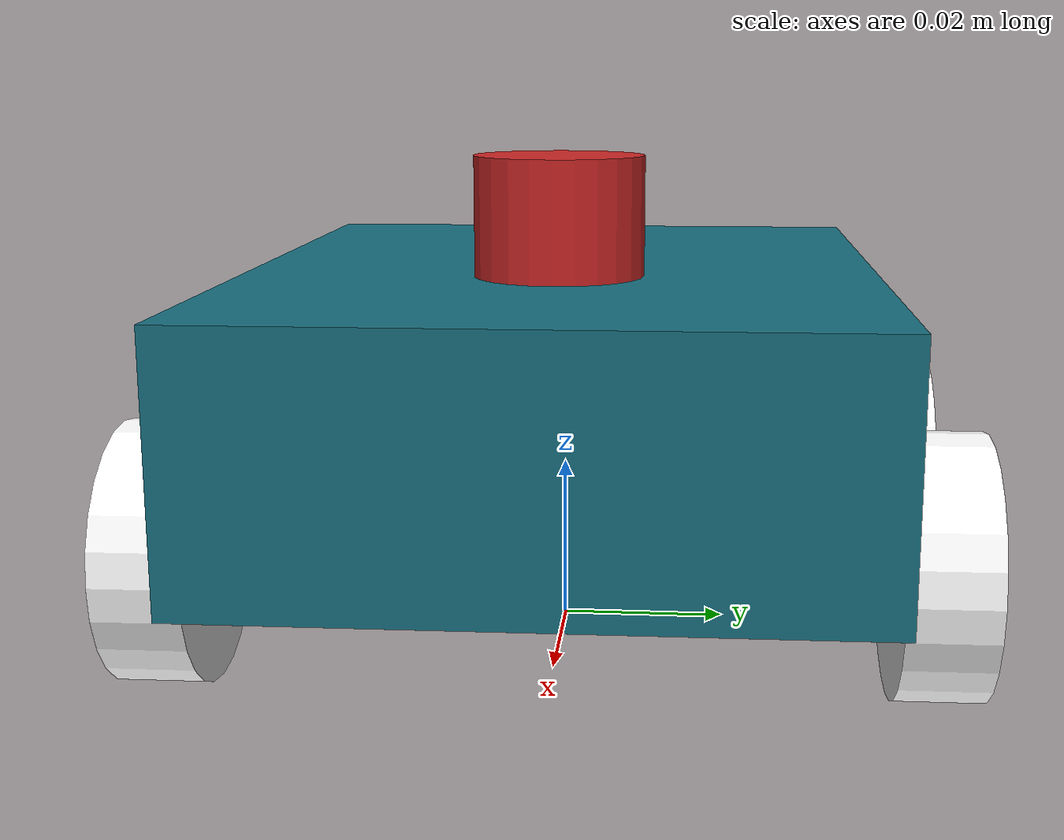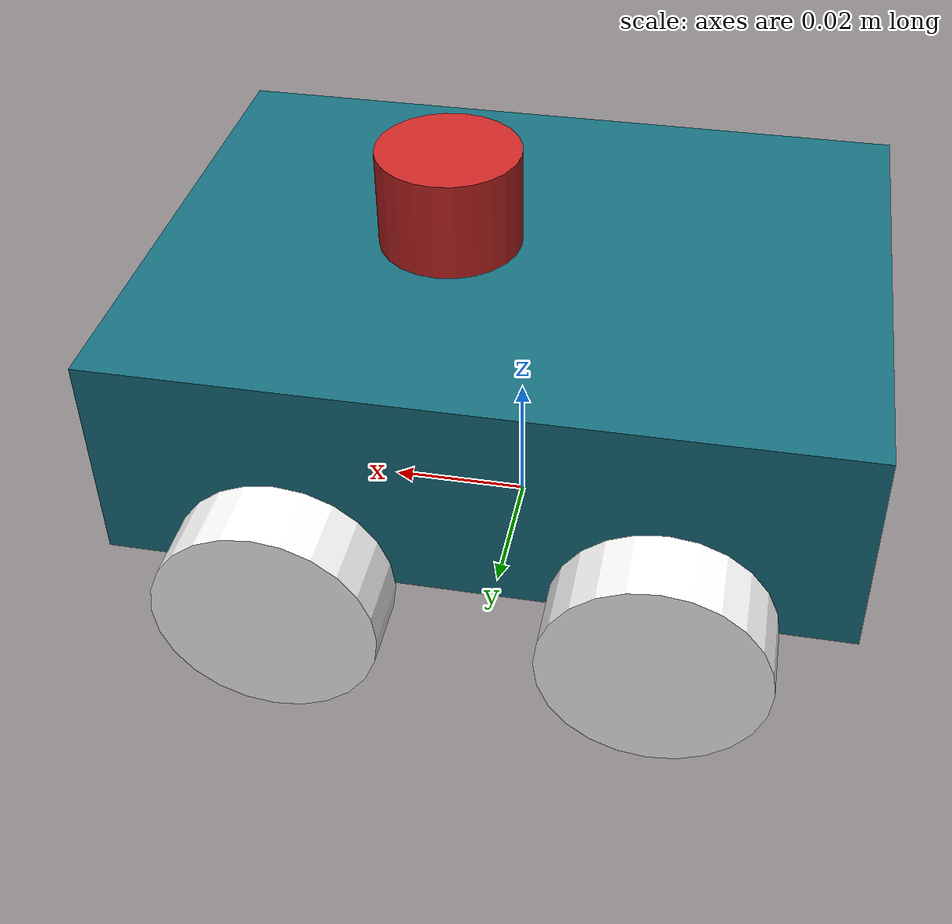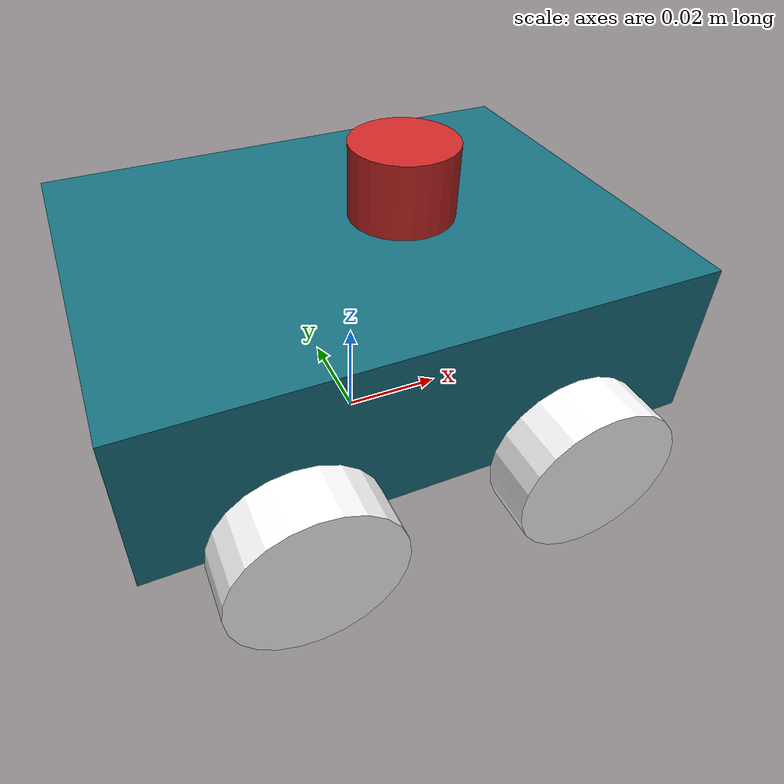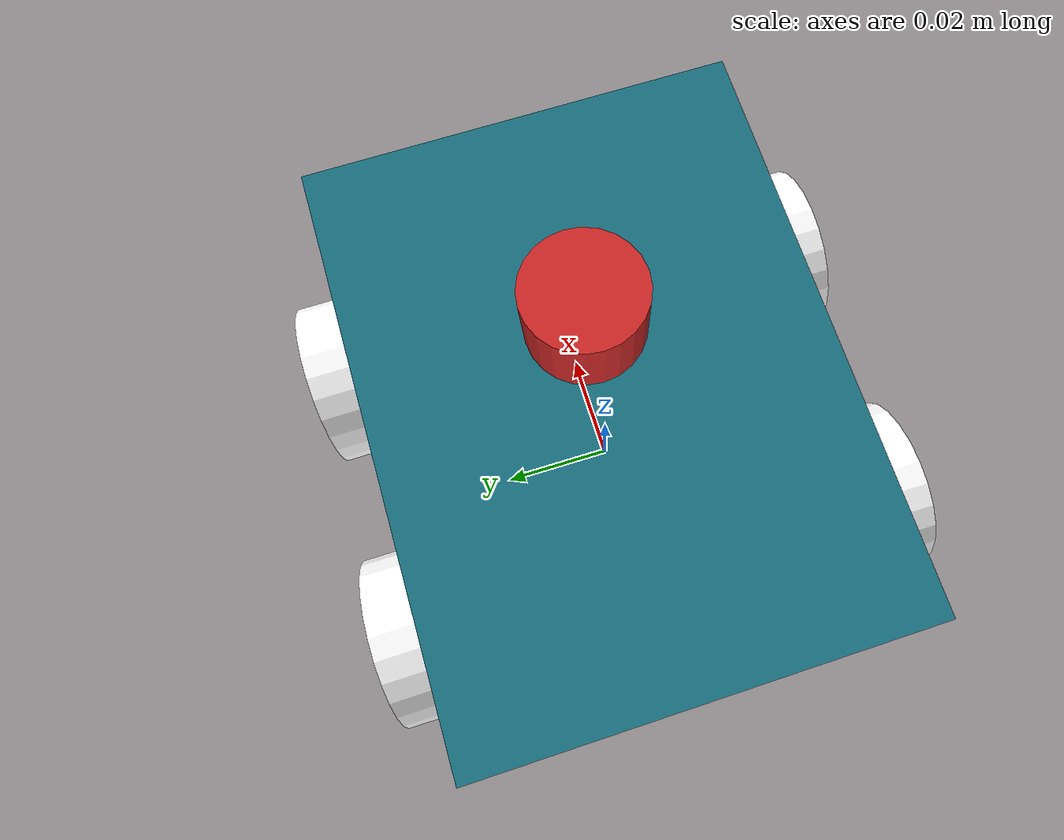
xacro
<?xml version="1.0"?>
<robot xmlns:xacro="http://www.ros.org/wiki/xacro" name="robot">

    <xacro:include filename= "lidar.xacro"/>

  <material name="green_dark">
    <color rgba="0.0 0.5 0.0 1"/>
  </material>

  <material name="blue">
      <color rgba="0.0 0.0 1.0 1"/>
  </material>

  <material name="yellow">
      <color rgba="1.0 1.0 0.0 1"/>
  </material>

  <material name="white">
      <color rgba="1.0 1.0 1.0 1"/>
  </material>

  <material name="box_bot_blue">
      <color rgba="0.088656 0.428691 0.491021 1"/>
  </material>

  <link name="base_link">
  </link>

  <!-- Body -->
  <link name="chassis">
     <visual>
        <geometry>
          <box size="0.1 0.075 0.03"/>
        </geometry>
        <material name="box_bot_blue"/>
     </visual>

  <inertial>
    <mass value="0.2"/>
    <origin rpy="0 0 0" xyz="0 0 0"/>
    <inertia ixx= "0.00010875"  ixy= "0" ixz= "0" iyy= "0.0001816666666666667" iyz= "0" izz= "0.0001816666666666667" />
  </inertial>

  <collision>
    <geometry>
      <box size="0.1 0.075 0.03"/>
    </geometry>
  </collision>
</link>
  <gazebo reference="chassis">
      <material>Gazebo/Blue</material>
  </gazebo>

  <joint name="base_link_joint" type="fixed">
    <origin rpy="0 0 0" xyz="0 0 0.03" />
    <parent link="base_link" />
    <child link="chassis" />
  </joint>

  <!-- Wheel Left -->
  <link name="left_front_wheel">
      <visual>
        <origin rpy="0 0 0" xyz="0 0 -0.005"/>
        <geometry>
          <cylinder length="0.01" radius="0.015"/>
        </geometry>
        <material name="white"/>
      </visual>

    <collision>
      <origin rpy="0 0 0" xyz="0 0 0"/>
      <geometry>
        <cylinder length="0.01" radius="0.015"/>
      </geometry>
    </collision>

    <inertial>
      <origin rpy="0 0 0" xyz="0 0 0"/>
      <mass value="0.05"/>
      <inertia ixx= "2.8166666666666667e-06"  ixy= "0" ixz= "0" iyy= "2.8166666666666667e-06" iyz= "0" izz= "5.625e-06" />
    </inertial>

  </link>

   <gazebo reference="left_front_wheel">
    <kp>1000000.0</kp>
    <kd>1000000.0</kd>
    <mu1>10.0</mu1>
    <mu2>10.0</mu2>
    <material>Gazebo/Red</material>
  </gazebo>

  <joint name="joint_left_front_wheel" type="continuous">
    <origin rpy="1.5707 0 0" xyz="0.025 0.038 -0.015"/>
    <child link="left_front_wheel"/>
    <parent link="chassis"/>
    <axis rpy="0 0 0" xyz="0 0 1"/>
    <limit effort="10000" velocity="1000"/>
    <joint_properties damping="1.0" friction="1.0"/>
  </joint>

  <!-- Wheel Left -->
  <link name="left_back_wheel">
      <visual>
        <origin rpy="0 0 0" xyz="0 0 -0.005"/>
        <geometry>
          <cylinder length="0.01" radius="0.015"/>
        </geometry>
        <material name="white"/>
      </visual>

    <collision>
      <origin rpy="0 0 0" xyz="0 0 0"/>
      <geometry>
        <cylinder length="0.01" radius="0.015"/>
      </geometry>
    </collision>

    <inertial>
      <origin rpy="0 0 0" xyz="0 0 0"/>
      <mass value="0.05"/>
      <inertia ixx= "2.8166666666666667e-06"  ixy= "0" ixz= "0" iyy= "2.8166666666666667e-06" iyz= "0" izz= "5.625e-06" />
    </inertial>

  </link>
   <gazebo reference="left_back_wheel">
    <kp>1000000.0</kp>
    <kd>1000000.0</kd>
    <mu1>10.0</mu1>
    <mu2>10.0</mu2>
    <material>Gazebo/Red</material>
  </gazebo>

  <joint name="joint_left_back_wheel" type="continuous">
    <origin rpy="1.5707 0 0" xyz="-0.025 0.038 -0.015"/>
    <child link="left_back_wheel"/>
    <parent link="chassis"/>
    <axis rpy="0 0 0" xyz="0 0 1"/>
    <limit effort="10000" velocity="1000"/>
    <joint_properties damping="1.0" friction="1.0"/>
  </joint>

  <!-- Wheel Right -->
  <link name="right_front_wheel">
      <visual>
        <origin rpy="0 0 0" xyz="0 0 0.005"/>
        <geometry>
          <cylinder length="0.01" radius="0.015"/>
        </geometry>
        <material name="white"/>
      </visual>
      <collision>
        <origin rpy="0 0 0" xyz="0 0 0"/>
        <geometry>
          <cylinder length="0.01" radius="0.015"/>
        </geometry>
      </collision>

      <inertial>
        <origin rpy="0 0 0" xyz="0 0 0"/>
        <mass value="0.05"/>
        <inertia ixx= "2.8166666666666667e-06"  ixy= "0" ixz= "0" iyy= "2.8166666666666667e-06" iyz= "0" izz= "5.625e-06" />
      </inertial>
  </link>
  <gazebo reference="right_front_wheel">
    <kp>1000000.0</kp>
    <kd>1000000.0</kd>
    <mu1>10.0</mu1>
    <mu2>10.0</mu2>
    <material>Gazebo/Red</material>
  </gazebo>
  <joint name="joint_right_front_wheel" type="continuous">
    <origin rpy="1.5707 0 0" xyz="0.025 -0.038 -0.015"/>
    <child link="right_front_wheel"/>
    <parent link="chassis"/>
    <axis rpy="0 0 0" xyz="0 0 1"/>
    <limit effort="10000" velocity="1000"/>
    <joint_properties damping="1.0" friction="1.0"/>
  </joint>

<!-- Wheel Right -->
  <link name="right_back_wheel">
      <visual>
        <origin rpy="0 0 0" xyz="0 0 0.005"/>
        <geometry>
          <cylinder length="0.01" radius="0.015"/>
        </geometry>
        <material name="white"/>
      </visual>
      <collision>
        <origin rpy="0 0 0" xyz="0 0 0"/>
        <geometry>
          <cylinder length="0.01" radius="0.015"/>
        </geometry>
      </collision>

      <inertial>
        <origin rpy="0 0 0" xyz="0 0 0"/>
        <mass value="0.05"/>
        <inertia ixx= "2.8166666666666667e-06"  ixy= "0" ixz= "0" iyy= "2.8166666666666667e-06" iyz= "0" izz= "5.625e-06" />
      </inertial>
  </link>
  <gazebo reference="right_back_wheel">
    <kp>1000000.0</kp>
    <kd>1000000.0</kd>
    <mu1>10.0</mu1>
    <mu2>10.0</mu2>
    <material>Gazebo/Red</material>
  </gazebo>

  <joint name="joint_right_back_wheel" type="continuous">
    <origin rpy="1.5707 0 0" xyz="-0.025 -0.038 -0.015"/>
    <child link="right_back_wheel"/>
    <parent link="chassis"/>
    <axis rpy="0 0 0" xyz="0 0 1"/>
    <limit effort="10000" velocity="1000"/>
    <joint_properties damping="1.0" friction="1.0"/>
  </joint>

 <!-- JOINT PUBLISHER -->
  <gazebo>
    <plugin name="box_bot_joint_state" filename="libgazebo_ros_joint_state_publisher.so">
      <ros>
          <remapping>~/out:=joint_states</remapping>
      </ros>
      <update_rate>30</update_rate>

      <joint_name>joint_left_front_wheel</joint_name>
      <joint_name>joint_left_back_wheel</joint_name>
      <joint_name>joint_right_front_wheel</joint_name>
      <joint_name>joint_right_back_wheel</joint_name>

    </plugin>
  </gazebo>

  <!-- Differential drive -->
  <gazebo>
    <plugin filename="libgazebo_ros_diff_drive.so" name="differential_drive_controller">

      <!-- wheels -->
      <left_joint>joint_left_back_wheel</left_joint>
      <right_joint>joint_right_back_wheel</right_joint>

      <!-- kinematics -->
      <wheel_separation>0.075</wheel_separation>
      <wheel_diameter>0.03</wheel_diameter>

      <!-- limits -->
      <max_wheel_torque>1.0</max_wheel_torque>
      <max_wheel_acceleration>0.5</max_wheel_acceleration>

      <!-- output -->
      <publish_odom>true</publish_odom>
      <publish_odom_tf>true</publish_odom_tf>

      <odometry_frame>odom</odometry_frame>
      <robot_base_frame>base_link</robot_base_frame>

    </plugin>
  </gazebo>
</robot>

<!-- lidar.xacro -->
<robot xmlns:xacro="http://www.ros.org/wiki/xacro" >

    <joint name="laser_joint" type="fixed">
        <parent link="chassis"/>
        <child link="laser_frame"/>
        <origin xyz="0.01 0 0.019" rpy="0 0 0"/>
    </joint>

    <link name="laser_frame">
        <visual>
            <geometry>
                <cylinder radius="0.01" length="0.02"/>
            </geometry>
            <material name="red"/>
        </visual>
        <collision>
            <geometry>
                <cylinder radius="0.01" length="0.02"/>
            </geometry>
        </collision>

        <inertial>
            <origin rpy="0 0 0" xyz="0 0 0"/>
            <mass value="0.2"/>
            <inertia ixx="1.5625e-05" ixy="0" ixz="0" iyy="1.5625e-05" iyz="0" izz="2.25e-05"/>
        </inertial>

    </link>

    <gazebo reference="laser_frame">
        <material>Gazebo/Red</material>

        <sensor name="laser" type="ray">
            <pose> 0 0 0 0 0 0 </pose>
            <visualize>true</visualize>
            <update_rate>10</update_rate>
            <ray>
                <scan>
                    <horizontal>
                        <samples>360</samples>
                        <min_angle>-3.14</min_angle>
                        <max_angle>3.14</max_angle>
                    </horizontal>
                </scan>
                <range>
                    <min>0.3</min>
                    <max>12</max>
                </range>
            </ray>
            <plugin name="laser_controller" filename="libgazebo_ros_ray_sensor.so">
                <ros>
                    <argument>~/out:=scan</argument>
                </ros>
                <output_type>sensor_msgs/LaserScan</output_type>
                <frame_name>laser_frame</frame_name>
            </plugin>
        </sensor>
    </gazebo>

</robot>
